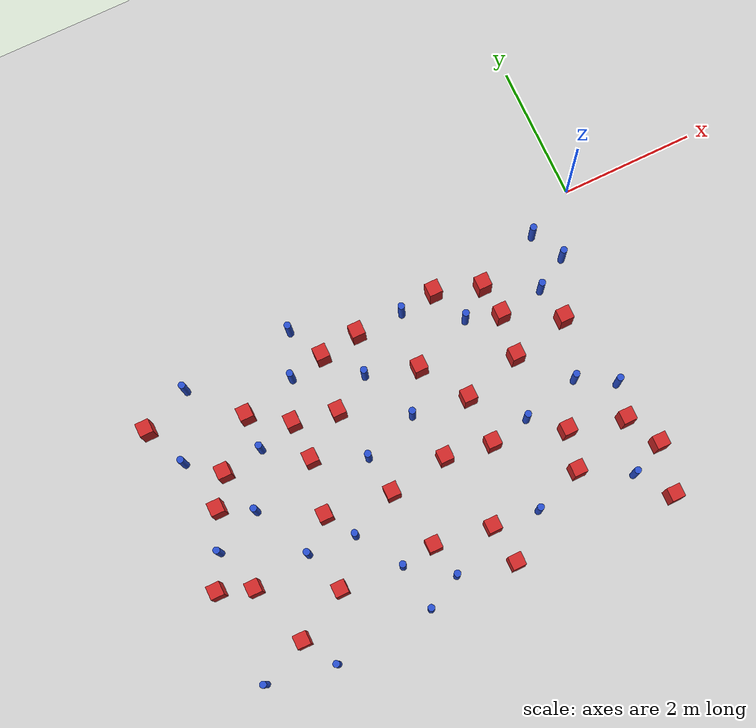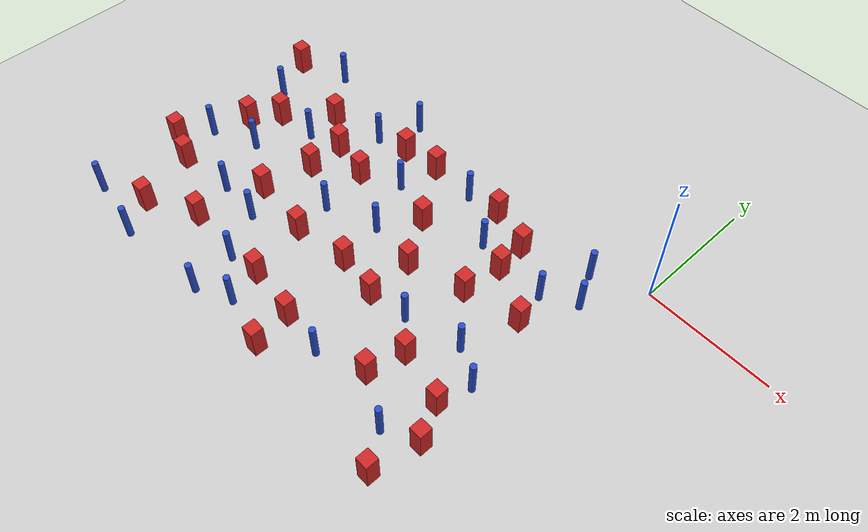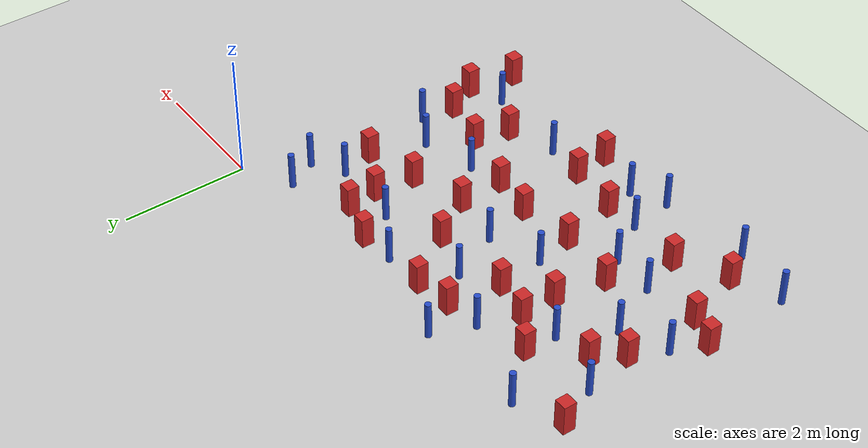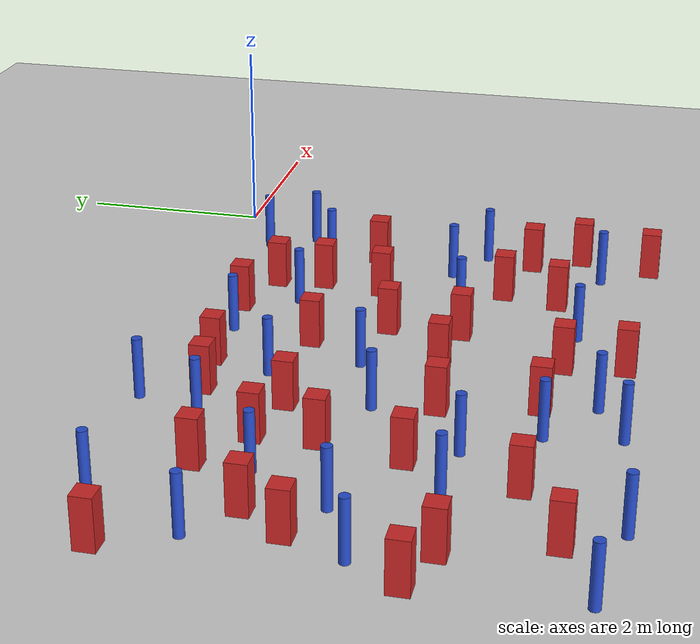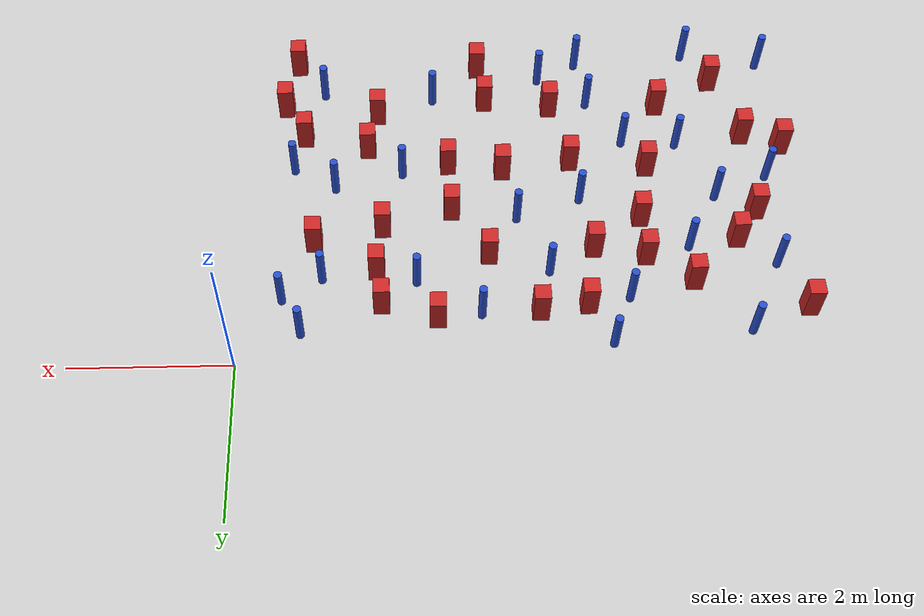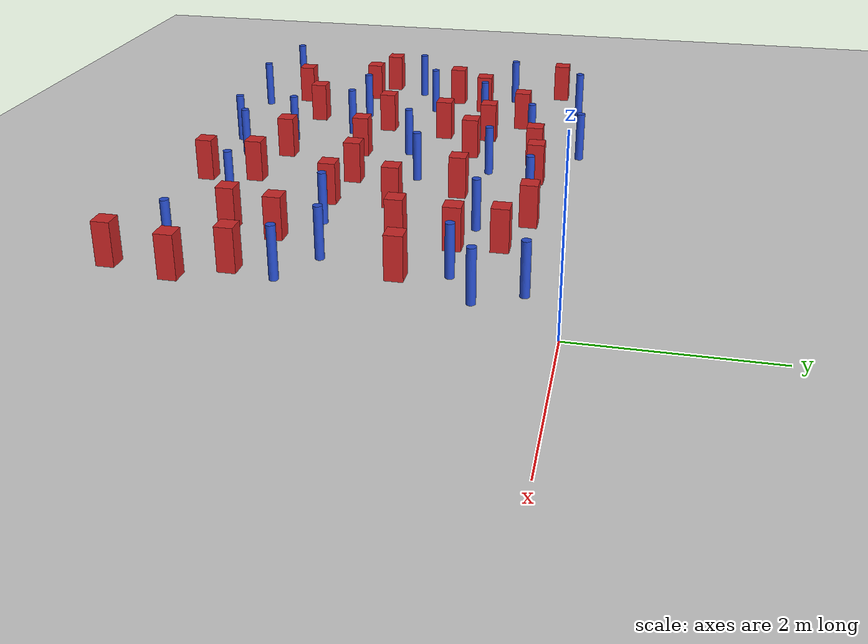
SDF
<sdf version="1.6">
 <world name="default">
  <model name="ground_plane">
   <static>1</static>
   <link name="link">
    <collision name="collision">
     <geometry><plane><normal>0 0 1</normal><size>100 100</size></plane></geometry>
     <surface><friction><ode><mu>100</mu><mu2>50</mu2></ode></friction></surface>
    </collision>
    <visual name="visual">
     <cast_shadows>0</cast_shadows>
     <geometry><plane><normal>0 0 1</normal><size>100 100</size></plane></geometry>
     <material>
      <ambient>1.0 1.0 1.0 1.0</ambient>
      <diffuse>0.8 0.8 0.8 1.0</diffuse>
      <specular>0.01 0.01 0.01 1.000000</specular>
     </material>
    </visual>
   </link>
  </model>
  <model name="pole_obstacle4">
   <static>true</static>
   <pose>-1.16663642655 -2.58017603443 2.88873142074e-08 -9.90536689791e-09 4.6021994899e-07 -1.20965994959e-07</pose>
   <link name="link">
    <pose>0 0 0.3 0 -0 0</pose>
    <inertial>
     <mass>1</mass>
     <inertia><ixx>0.145833</ixx><ixy>0</ixy><ixz>0</ixz><iyy>0.145833</iyy><iyz>0</iyz><izz>0.125</izz></inertia>
    </inertial>
    <collision name="collision">
     <geometry><cylinder><radius>0.05</radius><length>.6</length></cylinder></geometry>
    </collision>
    <visual name="visual">
     <geometry><cylinder><radius>0.05</radius><length>.6</length></cylinder></geometry>
     <material>
      <script><name>Gazebo/Blue</name><uri>file://media/materials/scripts/gazebo.material</uri></script>
     </material>
    </visual>
   </link>
  </model>
  <model name="pole_obstacle10">
   <static>true</static>
   <pose>-4.92236656138 -3.26465906516 2.88873142074e-08 -9.90536690245e-09 4.6021994898e-07 -1.20965994966e-07</pose>
   <link name="link">
    <pose>0 0 0.3 0 -0 0</pose>
    <inertial>
     <mass>1</mass>
     <inertia><ixx>0.145833</ixx><ixy>0</ixy><ixz>0</ixz><iyy>0.145833</iyy><iyz>0</iyz><izz>0.125</izz></inertia>
    </inertial>
    <collision name="collision">
     <geometry><cylinder><radius>0.05</radius><length>.6</length></cylinder></geometry>
    </collision>
    <visual name="visual">
     <geometry><cylinder><radius>0.05</radius><length>.6</length></cylinder></geometry>
     <material>
      <script><name>Gazebo/Blue</name><uri>file://media/materials/scripts/gazebo.material</uri></script>
     </material>
    </visual>
   </link>
  </model>
  <model name="square_post_obstacle10">
   <static>true</static>
   <pose>-6.96881998501 -0.65673575316 8.22691968438e-08 7.2212513382e-06 -7.54495500217e-07 2.29674213826e-05</pose>
   <link name="link">
    <pose>0 0 0.25 0 -0 0</pose>
    <inertial>
     <mass>100</mass>
     <inertia>
      <ixx>0.166667</ixx>
      <ixy>0</ixy>
      <ixz>0</ixz>
      <iyy>0.166667</iyy>
      <iyz>0</iyz>
      <izz>0.166667</izz>
     </inertia>
    </inertial>
    <collision name="collision"><geometry><box><size>.2 .2 .5</size></box></geometry></collision>
    <visual name="visual">
     <geometry><box><size>.2 .2 .5</size></box></geometry>
     <material>
      <script><name>Gazebo/Red</name><uri>file://media/materials/scripts/gazebo.material</uri></script>
     </material>
    </visual>
   </link>
  </model>
  <model name="pole_obstacle24">
   <static>true</static>
   <pose>-5.61684106353 -1.58426653269 2.88873142074e-08 -9.90536689445e-09 4.60219948999e-07 -1.20965994956e-07</pose>
   <link name="link">
    <pose>0 0 0.3 0 -0 0</pose>
    <inertial>
     <mass>1</mass>
     <inertia><ixx>0.145833</ixx><ixy>0</ixy><ixz>0</ixz><iyy>0.145833</iyy><iyz>0</iyz><izz>0.125</izz></inertia>
    </inertial>
    <collision name="collision">
     <geometry><cylinder><radius>0.05</radius><length>.6</length></cylinder></geometry>
    </collision>
    <visual name="visual">
     <geometry><cylinder><radius>0.05</radius><length>.6</length></cylinder></geometry>
     <material>
      <script><name>Gazebo/Blue</name><uri>file://media/materials/scripts/gazebo.material</uri></script>
     </material>
    </visual>
   </link>
  </model>
  <model name="square_post_obstacle20">
   <static>true</static>
   <pose>-4.40795118688 -1.56538913831 8.22691968438e-08 7.2212513382e-06 -7.54495500217e-07 2.29674213826e-05</pose>
   <link name="link">
    <pose>0 0 0.25 0 -0 0</pose>
    <inertial>
     <mass>100</mass>
     <inertia>
      <ixx>0.166667</ixx>
      <ixy>0</ixy>
      <ixz>0</ixz>
      <iyy>0.166667</iyy>
      <iyz>0</iyz>
      <izz>0.166667</izz>
     </inertia>
    </inertial>
    <collision name="collision"><geometry><box><size>.2 .2 .5</size></box></geometry></collision>
    <visual name="visual">
     <geometry><box><size>.2 .2 .5</size></box></geometry>
     <material>
      <script><name>Gazebo/Red</name><uri>file://media/materials/scripts/gazebo.material</uri></script>
     </material>
    </visual>
   </link>
  </model>
  <model name="pole_obstacle30">
   <static>true</static>
   <pose>-3.84176617193 -1.24504539773 2.88873142074e-08 -9.90536689395e-09 4.60219949e-07 -1.20965994953e-07</pose>
   <link name="link">
    <pose>0 0 0.3 0 -0 0</pose>
    <inertial>
     <mass>1</mass>
     <inertia><ixx>0.145833</ixx><ixy>0</ixy><ixz>0</ixz><iyy>0.145833</iyy><iyz>0</iyz><izz>0.125</izz></inertia>
    </inertial>
    <collision name="collision">
     <geometry><cylinder><radius>0.05</radius><length>.6</length></cylinder></geometry>
    </collision>
    <visual name="visual">
     <geometry><cylinder><radius>0.05</radius><length>.6</length></cylinder></geometry>
     <material>
      <script><name>Gazebo/Blue</name><uri>file://media/materials/scripts/gazebo.material</uri></script>
     </material>
    </visual>
   </link>
  </model>
  <model name="square_post_obstacle25">
   <static>true</static>
   <pose>-5.42691669318 -3.85780183142 8.22691968438e-08 7.2212513382e-06 -7.54495500217e-07 2.29674213826e-05</pose>
   <link name="link">
    <pose>0 0 0.25 0 -0 0</pose>
    <inertial>
     <mass>100</mass>
     <inertia>
      <ixx>0.166667</ixx>
      <ixy>0</ixy>
      <ixz>0</ixz>
      <iyy>0.166667</iyy>
      <iyz>0</iyz>
      <izz>0.166667</izz>
     </inertia>
    </inertial>
    <collision name="collision"><geometry><box><size>.2 .2 .5</size></box></geometry></collision>
    <visual name="visual">
     <geometry><box><size>.2 .2 .5</size></box></geometry>
     <material>
      <script><name>Gazebo/Red</name><uri>file://media/materials/scripts/gazebo.material</uri></script>
     </material>
    </visual>
   </link>
  </model>
  <model name="square_post_obstacle29">
   <static>true</static>
   <pose>-3.09550825912 -1.48532517315 8.22691968438e-08 7.2212513382e-06 -7.54495500217e-07 2.29674213826e-05</pose>
   <link name="link">
    <pose>0 0 0.25 0 -0 0</pose>
    <inertial>
     <mass>100</mass>
     <inertia>
      <ixx>0.166667</ixx>
      <ixy>0</ixy>
      <ixz>0</ixz>
      <iyy>0.166667</iyy>
      <iyz>0</iyz>
      <izz>0.166667</izz>
     </inertia>
    </inertial>
    <collision name="collision"><geometry><box><size>.2 .2 .5</size></box></geometry></collision>
    <visual name="visual">
     <geometry><box><size>.2 .2 .5</size></box></geometry>
     <material>
      <script><name>Gazebo/Red</name><uri>file://media/materials/scripts/gazebo.material</uri></script>
     </material>
    </visual>
   </link>
  </model>
  <model name="square_post_obstacle33">
   <static>true</static>
   <pose>-3.0570038275 -4.56616719485 8.22691968438e-08 7.2212513382e-06 -7.54495500217e-07 2.29674213826e-05</pose>
   <link name="link">
    <pose>0 0 0.25 0 -0 0</pose>
    <inertial>
     <mass>100</mass>
     <inertia>
      <ixx>0.166667</ixx>
      <ixy>0</ixy>
      <ixz>0</ixz>
      <iyy>0.166667</iyy>
      <iyz>0</iyz>
      <izz>0.166667</izz>
     </inertia>
    </inertial>
    <collision name="collision"><geometry><box><size>.2 .2 .5</size></box></geometry></collision>
    <visual name="visual">
     <geometry><box><size>.2 .2 .5</size></box></geometry>
     <material>
      <script><name>Gazebo/Red</name><uri>file://media/materials/scripts/gazebo.material</uri></script>
     </material>
    </visual>
   </link>
  </model>
  <model name="square_post_obstacle38">
   <static>true</static>
   <pose>-6.51784502403 -2.10433393995 8.22691968438e-08 7.2212513382e-06 -7.54495500217e-07 2.29674213826e-05</pose>
   <link name="link">
    <pose>0 0 0.25 0 -0 0</pose>
    <inertial>
     <mass>100</mass>
     <inertia>
      <ixx>0.166667</ixx>
      <ixy>0</ixy>
      <ixz>0</ixz>
      <iyy>0.166667</iyy>
      <iyz>0</iyz>
      <izz>0.166667</izz>
     </inertia>
    </inertial>
    <collision name="collision"><geometry><box><size>.2 .2 .5</size></box></geometry></collision>
    <visual name="visual">
     <geometry><box><size>.2 .2 .5</size></box></geometry>
     <material>
      <script><name>Gazebo/Red</name><uri>file://media/materials/scripts/gazebo.material</uri></script>
     </material>
    </visual>
   </link>
  </model>
  <model name="pole_obstacle55">
   <static>true</static>
   <pose>-0.530656938765 -0.892288822377 2.88873142074e-08 -9.90536689626e-09 4.60219948994e-07 -1.20965994957e-07</pose>
   <link name="link">
    <pose>0 0 0.3 0 -0 0</pose>
    <inertial>
     <mass>1</mass>
     <inertia><ixx>0.145833</ixx><ixy>0</ixy><ixz>0</ixz><iyy>0.145833</iyy><iyz>0</iyz><izz>0.125</izz></inertia>
    </inertial>
    <collision name="collision">
     <geometry><cylinder><radius>0.05</radius><length>.6</length></cylinder></geometry>
    </collision>
    <visual name="visual">
     <geometry><cylinder><radius>0.05</radius><length>.6</length></cylinder></geometry>
     <material>
      <script><name>Gazebo/Blue</name><uri>file://media/materials/scripts/gazebo.material</uri></script>
     </material>
    </visual>
   </link>
  </model>
  <model name="square_post_obstacle50">
   <static>true</static>
   <pose>-6.50109970489 -3.33422519101 8.22691968438e-08 7.2212513382e-06 -7.54495500217e-07 2.29674213826e-05</pose>
   <link name="link">
    <pose>0 0 0.25 0 -0 0</pose>
    <inertial>
     <mass>100</mass>
     <inertia>
      <ixx>0.166667</ixx>
      <ixy>0</ixy>
      <ixz>0</ixz>
      <iyy>0.166667</iyy>
      <iyz>0</iyz>
      <izz>0.166667</izz>
     </inertia>
    </inertial>
    <collision name="collision"><geometry><box><size>.2 .2 .5</size></box></geometry></collision>
    <visual name="visual">
     <geometry><box><size>.2 .2 .5</size></box></geometry>
     <material>
      <script><name>Gazebo/Red</name><uri>file://media/materials/scripts/gazebo.material</uri></script>
     </material>
    </visual>
   </link>
  </model>
  <model name="square_post_obstacle54">
   <static>true</static>
   <pose>-4.20372957103 -2.93609565165 8.22691968438e-08 7.2212513382e-06 -7.54495500217e-07 2.29674213826e-05</pose>
   <link name="link">
    <pose>0 0 0.25 0 -0 0</pose>
    <inertial>
     <mass>100</mass>
     <inertia>
      <ixx>0.166667</ixx>
      <ixy>0</ixy>
      <ixz>0</ixz>
      <iyy>0.166667</iyy>
      <iyz>0</iyz>
      <izz>0.166667</izz>
     </inertia>
    </inertial>
    <collision name="collision"><geometry><box><size>.2 .2 .5</size></box></geometry></collision>
    <visual name="visual">
     <geometry><box><size>.2 .2 .5</size></box></geometry>
     <material>
      <script><name>Gazebo/Red</name><uri>file://media/materials/scripts/gazebo.material</uri></script>
     </material>
    </visual>
   </link>
  </model>
  <model name="pole_obstacle71">
   <static>true</static>
   <pose>-6.90318449231 -4.59337825016 2.88873142074e-08 -9.90536690842e-09 4.60219948965e-07 -1.20965994976e-07</pose>
   <link name="link">
    <pose>0 0 0.3 0 -0 0</pose>
    <inertial>
     <mass>1</mass>
     <inertia><ixx>0.145833</ixx><ixy>0</ixy><ixz>0</ixz><iyy>0.145833</iyy><iyz>0</iyz><izz>0.125</izz></inertia>
    </inertial>
    <collision name="collision">
     <geometry><cylinder><radius>0.05</radius><length>.6</length></cylinder></geometry>
    </collision>
    <visual name="visual">
     <geometry><cylinder><radius>0.05</radius><length>.6</length></cylinder></geometry>
     <material>
      <script><name>Gazebo/Blue</name><uri>file://media/materials/scripts/gazebo.material</uri></script>
     </material>
    </visual>
   </link>
  </model>
  <model name="pole_obstacle79">
   <static>true</static>
   <pose>-3.88040402192 -4.37501513922 2.88873142074e-08 -9.90536689859e-09 4.60219948989e-07 -1.20965994961e-07</pose>
   <link name="link">
    <pose>0 0 0.3 0 -0 0</pose>
    <inertial>
     <mass>1</mass>
     <inertia><ixx>0.145833</ixx><ixy>0</ixy><ixz>0</ixz><iyy>0.145833</iyy><iyz>0</iyz><izz>0.125</izz></inertia>
    </inertial>
    <collision name="collision">
     <geometry><cylinder><radius>0.05</radius><length>.6</length></cylinder></geometry>
    </collision>
    <visual name="visual">
     <geometry><cylinder><radius>0.05</radius><length>.6</length></cylinder></geometry>
     <material>
      <script><name>Gazebo/Blue</name><uri>file://media/materials/scripts/gazebo.material</uri></script>
     </material>
    </visual>
   </link>
  </model>
  <model name="pole_obstacle80">
   <static>true</static>
   <pose>-6.68194379249 -1.30589174306 2.88873142074e-08 -9.90536689445e-09 4.60219948999e-07 -1.20965994956e-07</pose>
   <link name="link">
    <pose>0 0 0.3 0 -0 0</pose>
    <inertial>
     <mass>1</mass>
     <inertia><ixx>0.145833</ixx><ixy>0</ixy><ixz>0</ixz><iyy>0.145833</iyy><iyz>0</iyz><izz>0.125</izz></inertia>
    </inertial>
    <collision name="collision">
     <geometry><cylinder><radius>0.05</radius><length>.6</length></cylinder></geometry>
    </collision>
    <visual name="visual">
     <geometry><cylinder><radius>0.05</radius><length>.6</length></cylinder></geometry>
     <material>
      <script><name>Gazebo/Blue</name><uri>file://media/materials/scripts/gazebo.material</uri></script>
     </material>
    </visual>
   </link>
  </model>
  <model name="square_post_obstacle69">
   <static>true</static>
   <pose>-3.68719439955 -0.652360961696 8.22691968438e-08 7.2212513382e-06 -7.54495500217e-07 2.29674213826e-05</pose>
   <link name="link">
    <pose>0 0 0.25 0 -0 0</pose>
    <inertial>
     <mass>100</mass>
     <inertia>
      <ixx>0.166667</ixx>
      <ixy>0</ixy>
      <ixz>0</ixz>
      <iyy>0.166667</iyy>
      <iyz>0</iyz>
      <izz>0.166667</izz>
     </inertia>
    </inertial>
    <collision name="collision"><geometry><box><size>.2 .2 .5</size></box></geometry></collision>
    <visual name="visual">
     <geometry><box><size>.2 .2 .5</size></box></geometry>
     <material>
      <script><name>Gazebo/Red</name><uri>file://media/materials/scripts/gazebo.material</uri></script>
     </material>
    </visual>
   </link>
  </model>
  <model name="square_post_obstacle70">
   <static>true</static>
   <pose>-6.19221580819 -4.2697845086 8.22691968438e-08 7.22125133819e-06 -7.54495500217e-07 2.29674213826e-05</pose>
   <link name="link">
    <pose>0 0 0.25 0 -0 0</pose>
    <inertial>
     <mass>100</mass>
     <inertia>
      <ixx>0.166667</ixx>
      <ixy>0</ixy>
      <ixz>0</ixz>
      <iyy>0.166667</iyy>
      <iyz>0</iyz>
      <izz>0.166667</izz>
     </inertia>
    </inertial>
    <collision name="collision"><geometry><box><size>.2 .2 .5</size></box></geometry></collision>
    <visual name="visual">
     <geometry><box><size>.2 .2 .5</size></box></geometry>
     <material>
      <script><name>Gazebo/Red</name><uri>file://media/materials/scripts/gazebo.material</uri></script>
     </material>
    </visual>
   </link>
  </model>
  <model name="pole_obstacle83">
   <static>true</static>
   <pose>-4.80191894359 -0.843159100988 2.88873142074e-08 -9.90536689837e-09 4.60219948989e-07 -1.2096599496e-07</pose>
   <link name="link">
    <pose>0 0 0.3 0 -0 0</pose>
    <inertial>
     <mass>1</mass>
     <inertia><ixx>0.145833</ixx><ixy>0</ixy><ixz>0</ixz><iyy>0.145833</iyy><iyz>0</iyz><izz>0.125</izz></inertia>
    </inertial>
    <collision name="collision">
     <geometry><cylinder><radius>0.05</radius><length>.6</length></cylinder></geometry>
    </collision>
    <visual name="visual">
     <geometry><cylinder><radius>0.05</radius><length>.6</length></cylinder></geometry>
     <material>
      <script><name>Gazebo/Blue</name><uri>file://media/materials/scripts/gazebo.material</uri></script>
     </material>
    </visual>
   </link>
  </model>
  <model name="square_post_obstacle82">
   <static>true</static>
   <pose>-1.75753726139 -0.787840217617 8.22691968438e-08 7.2212513382e-06 -7.54495500217e-07 2.29674213826e-05</pose>
   <link name="link">
    <pose>0 0 0.25 0 -0 0</pose>
    <inertial>
     <mass>100</mass>
     <inertia>
      <ixx>0.166667</ixx>
      <ixy>0</ixy>
      <ixz>0</ixz>
      <iyy>0.166667</iyy>
      <iyz>0</iyz>
      <izz>0.166667</izz>
     </inertia>
    </inertial>
    <collision name="collision"><geometry><box><size>.2 .2 .5</size></box></geometry></collision>
    <visual name="visual">
     <geometry><box><size>.2 .2 .5</size></box></geometry>
     <material>
      <script><name>Gazebo/Red</name><uri>file://media/materials/scripts/gazebo.material</uri></script>
     </material>
    </visual>
   </link>
  </model>
  <model name="square_post_obstacle90">
   <static>true</static>
   <pose>-1.71524015748 -3.77076345288 8.22691968438e-08 7.2212513382e-06 -7.54495500217e-07 2.29674213826e-05</pose>
   <link name="link">
    <pose>0 0 0.25 0 -0 0</pose>
    <inertial>
     <mass>100</mass>
     <inertia>
      <ixx>0.166667</ixx>
      <ixy>0</ixy>
      <ixz>0</ixz>
      <iyy>0.166667</iyy>
      <iyz>0</iyz>
      <izz>0.166667</izz>
     </inertia>
    </inertial>
    <collision name="collision"><geometry><box><size>.2 .2 .5</size></box></geometry></collision>
    <visual name="visual">
     <geometry><box><size>.2 .2 .5</size></box></geometry>
     <material>
      <script><name>Gazebo/Red</name><uri>file://media/materials/scripts/gazebo.material</uri></script>
     </material>
    </visual>
   </link>
  </model>
  <model name="square_post_obstacle91">
   <static>true</static>
   <pose>-5.05463059027 -1.43405411549 8.22691968438e-08 7.2212513382e-06 -7.54495500217e-07 2.29674213826e-05</pose>
   <link name="link">
    <pose>0 0 0.25 0 -0 0</pose>
    <inertial>
     <mass>100</mass>
     <inertia>
      <ixx>0.166667</ixx>
      <ixy>0</ixy>
      <ixz>0</ixz>
      <iyy>0.166667</iyy>
      <iyz>0</iyz>
      <izz>0.166667</izz>
     </inertia>
    </inertial>
    <collision name="collision"><geometry><box><size>.2 .2 .5</size></box></geometry></collision>
    <visual name="visual">
     <geometry><box><size>.2 .2 .5</size></box></geometry>
     <material>
      <script><name>Gazebo/Red</name><uri>file://media/materials/scripts/gazebo.material</uri></script>
     </material>
    </visual>
   </link>
  </model>
  <model name="pole_obstacle106">
   <static>true</static>
   <pose>-2.02990933846 -2.8007991814 2.88873142074e-08 -9.90536692171e-09 4.60219948934e-07 -1.20965994985e-07</pose>
   <link name="link">
    <pose>0 0 0.3 0 -0 0</pose>
    <inertial>
     <mass>1</mass>
     <inertia><ixx>0.145833</ixx><ixy>0</ixy><ixz>0</ixz><iyy>0.145833</iyy><iyz>0</iyz><izz>0.125</izz></inertia>
    </inertial>
    <collision name="collision">
     <geometry><cylinder><radius>0.05</radius><length>.6</length></cylinder></geometry>
    </collision>
    <visual name="visual">
     <geometry><cylinder><radius>0.05</radius><length>.6</length></cylinder></geometry>
     <material>
      <script><name>Gazebo/Blue</name><uri>file://media/materials/scripts/gazebo.material</uri></script>
     </material>
    </visual>
   </link>
  </model>
  <model name="pole_obstacle107">
   <static>true</static>
   <pose>-4.29246524523 -2.34553854923 2.88873142074e-08 -9.90536690245e-09 4.6021994898e-07 -1.20965994966e-07</pose>
   <link name="link">
    <pose>0 0 0.3 0 -0 0</pose>
    <inertial>
     <mass>1</mass>
     <inertia><ixx>0.145833</ixx><ixy>0</ixy><ixz>0</ixz><iyy>0.145833</iyy><iyz>0</iyz><izz>0.125</izz></inertia>
    </inertial>
    <collision name="collision">
     <geometry><cylinder><radius>0.05</radius><length>.6</length></cylinder></geometry>
    </collision>
    <visual name="visual">
     <geometry><cylinder><radius>0.05</radius><length>.6</length></cylinder></geometry>
     <material>
      <script><name>Gazebo/Blue</name><uri>file://media/materials/scripts/gazebo.material</uri></script>
     </material>
    </visual>
   </link>
  </model>
  <model name="square_post_obstacle111">
   <static>true</static>
   <pose>-6.22324336756 -1.67517569527 8.22691968438e-08 7.2212513382e-06 -7.54495500217e-07 2.29674213826e-05</pose>
   <link name="link">
    <pose>0 0 0.25 0 -0 0</pose>
    <inertial>
     <mass>100</mass>
     <inertia>
      <ixx>0.166667</ixx>
      <ixy>0</ixy>
      <ixz>0</ixz>
      <iyy>0.166667</iyy>
      <iyz>0</iyz>
      <izz>0.166667</izz>
     </inertia>
    </inertial>
    <collision name="collision"><geometry><box><size>.2 .2 .5</size></box></geometry></collision>
    <visual name="visual">
     <geometry><box><size>.2 .2 .5</size></box></geometry>
     <material>
      <script><name>Gazebo/Red</name><uri>file://media/materials/scripts/gazebo.material</uri></script>
     </material>
    </visual>
   </link>
  </model>
  <model name="square_post_obstacle114">
   <static>true</static>
   <pose>-0.761712458081 -3.40460222311 8.22691968438e-08 7.2212513382e-06 -7.54495500217e-07 2.29674213826e-05</pose>
   <link name="link">
    <pose>0 0 0.25 0 -0 0</pose>
    <inertial>
     <mass>100</mass>
     <inertia>
      <ixx>0.166667</ixx>
      <ixy>0</ixy>
      <ixz>0</ixz>
      <iyy>0.166667</iyy>
      <iyz>0</iyz>
      <izz>0.166667</izz>
     </inertia>
    </inertial>
    <collision name="collision"><geometry><box><size>.2 .2 .5</size></box></geometry></collision>
    <visual name="visual">
     <geometry><box><size>.2 .2 .5</size></box></geometry>
     <material>
      <script><name>Gazebo/Red</name><uri>file://media/materials/scripts/gazebo.material</uri></script>
     </material>
    </visual>
   </link>
  </model>
  <model name="pole_obstacle116">
   <static>true</static>
   <pose>-1.00162326107 -4.16505022232 2.88873142074e-08 -9.90536689792e-09 4.6021994899e-07 -1.2096599496e-07</pose>
   <link name="link">
    <pose>0 0 0.3 0 -0 0</pose>
    <inertial>
     <mass>1</mass>
     <inertia><ixx>0.145833</ixx><ixy>0</ixy><ixz>0</ixz><iyy>0.145833</iyy><iyz>0</iyz><izz>0.125</izz></inertia>
    </inertial>
    <collision name="collision">
     <geometry><cylinder><radius>0.05</radius><length>.6</length></cylinder></geometry>
    </collision>
    <visual name="visual">
     <geometry><cylinder><radius>0.05</radius><length>.6</length></cylinder></geometry>
     <material>
      <script><name>Gazebo/Blue</name><uri>file://media/materials/scripts/gazebo.material</uri></script>
     </material>
    </visual>
   </link>
  </model>
  <model name="pole_obstacle117">
   <static>true</static>
   <pose>-3.47391530844 -2.06127785062 2.88873142074e-08 -9.90536690232e-09 4.6021994898e-07 -1.20965994968e-07</pose>
   <link name="link">
    <pose>0 0 0.3 0 -0 0</pose>
    <inertial>
     <mass>1</mass>
     <inertia><ixx>0.145833</ixx><ixy>0</ixy><ixz>0</ixz><iyy>0.145833</iyy><iyz>0</iyz><izz>0.125</izz></inertia>
    </inertial>
    <collision name="collision">
     <geometry><cylinder><radius>0.05</radius><length>.6</length></cylinder></geometry>
    </collision>
    <visual name="visual">
     <geometry><cylinder><radius>0.05</radius><length>.6</length></cylinder></geometry>
     <material>
      <script><name>Gazebo/Blue</name><uri>file://media/materials/scripts/gazebo.material</uri></script>
     </material>
    </visual>
   </link>
  </model>
  <model name="square_post_obstacle116">
   <static>true</static>
   <pose>-2.6486870793 -2.17399005947 8.22691968438e-08 7.2212513382e-06 -7.54495500217e-07 2.29674213826e-05</pose>
   <link name="link">
    <pose>0 0 0.25 0 -0 0</pose>
    <inertial>
     <mass>100</mass>
     <inertia>
      <ixx>0.166667</ixx>
      <ixy>0</ixy>
      <ixz>0</ixz>
      <iyy>0.166667</iyy>
      <iyz>0</iyz>
      <izz>0.166667</izz>
     </inertia>
    </inertial>
    <collision name="collision"><geometry><box><size>.2 .2 .5</size></box></geometry></collision>
    <visual name="visual">
     <geometry><box><size>.2 .2 .5</size></box></geometry>
     <material>
      <script><name>Gazebo/Red</name><uri>file://media/materials/scripts/gazebo.material</uri></script>
     </material>
    </visual>
   </link>
  </model>
  <model name="pole_obstacle121">
   <static>true</static>
   <pose>-6.24059979822 -0.349005802847 2.88873142074e-08 -9.90536689981e-09 4.60219948986e-07 -1.20965994962e-07</pose>
   <link name="link">
    <pose>0 0 0.3 0 -0 0</pose>
    <inertial>
     <mass>1</mass>
     <inertia><ixx>0.145833</ixx><ixy>0</ixy><ixz>0</ixz><iyy>0.145833</iyy><iyz>0</iyz><izz>0.125</izz></inertia>
    </inertial>
    <collision name="collision">
     <geometry><cylinder><radius>0.05</radius><length>.6</length></cylinder></geometry>
    </collision>
    <visual name="visual">
     <geometry><cylinder><radius>0.05</radius><length>.6</length></cylinder></geometry>
     <material>
      <script><name>Gazebo/Blue</name><uri>file://media/materials/scripts/gazebo.material</uri></script>
     </material>
    </visual>
   </link>
  </model>
  <model name="square_post_obstacle121">
   <static>true</static>
   <pose>-3.13533512477 -3.97251407063 8.22691968438e-08 7.2212513382e-06 -7.54495500217e-07 2.29674213826e-05</pose>
   <link name="link">
    <pose>0 0 0.25 0 -0 0</pose>
    <inertial>
     <mass>100</mass>
     <inertia>
      <ixx>0.166667</ixx>
      <ixy>0</ixy>
      <ixz>0</ixz>
      <iyy>0.166667</iyy>
      <iyz>0</iyz>
      <izz>0.166667</izz>
     </inertia>
    </inertial>
    <collision name="collision"><geometry><box><size>.2 .2 .5</size></box></geometry></collision>
    <visual name="visual">
     <geometry><box><size>.2 .2 .5</size></box></geometry>
     <material>
      <script><name>Gazebo/Red</name><uri>file://media/materials/scripts/gazebo.material</uri></script>
     </material>
    </visual>
   </link>
  </model>
  <model name="pole_obstacle132">
   <static>true</static>
   <pose>-5.62884213572 -3.21875507704 2.88873142074e-08 -9.90536690245e-09 4.6021994898e-07 -1.20965994966e-07</pose>
   <link name="link">
    <pose>0 0 0.3 0 -0 0</pose>
    <inertial>
     <mass>1</mass>
     <inertia><ixx>0.145833</ixx><ixy>0</ixy><ixz>0</ixz><iyy>0.145833</iyy><iyz>0</iyz><izz>0.125</izz></inertia>
    </inertial>
    <collision name="collision">
     <geometry><cylinder><radius>0.05</radius><length>.6</length></cylinder></geometry>
    </collision>
    <visual name="visual">
     <geometry><cylinder><radius>0.05</radius><length>.6</length></cylinder></geometry>
     <material>
      <script><name>Gazebo/Blue</name><uri>file://media/materials/scripts/gazebo.material</uri></script>
     </material>
    </visual>
   </link>
  </model>
  <model name="pole_obstacle135">
   <static>true</static>
   <pose>-6.04095069701 -2.356133228 2.88873142074e-08 -9.90536690245e-09 4.6021994898e-07 -1.20965994966e-07</pose>
   <link name="link">
    <pose>0 0 0.3 0 -0 0</pose>
    <inertial>
     <mass>1</mass>
     <inertia><ixx>0.145833</ixx><ixy>0</ixy><ixz>0</ixz><iyy>0.145833</iyy><iyz>0</iyz><izz>0.125</izz></inertia>
    </inertial>
    <collision name="collision">
     <geometry><cylinder><radius>0.05</radius><length>.6</length></cylinder></geometry>
    </collision>
    <visual name="visual">
     <geometry><cylinder><radius>0.05</radius><length>.6</length></cylinder></geometry>
     <material>
      <script><name>Gazebo/Blue</name><uri>file://media/materials/scripts/gazebo.material</uri></script>
     </material>
    </visual>
   </link>
  </model>
  <model name="square_post_obstacle134">
   <static>true</static>
   <pose>-0.914492345167 -1.71746240279 8.22691968438e-08 7.22125133819e-06 -7.54495500217e-07 2.29674213826e-05</pose>
   <link name="link">
    <pose>0 0 0.25 0 -0 0</pose>
    <inertial>
     <mass>100</mass>
     <inertia>
      <ixx>0.166667</ixx>
      <ixy>0</ixy>
      <ixz>0</ixz>
      <iyy>0.166667</iyy>
      <iyz>0</iyz>
      <izz>0.166667</izz>
     </inertia>
    </inertial>
    <collision name="collision"><geometry><box><size>.2 .2 .5</size></box></geometry></collision>
    <visual name="visual">
     <geometry><box><size>.2 .2 .5</size></box></geometry>
     <material>
      <script><name>Gazebo/Red</name><uri>file://media/materials/scripts/gazebo.material</uri></script>
     </material>
    </visual>
   </link>
  </model>
  <model name="pole_obstacle143">
   <static>true</static>
   <pose>-4.5048139747 -3.93658515417 2.88873142074e-08 -9.90536690245e-09 4.6021994898e-07 -1.20965994966e-07</pose>
   <link name="link">
    <pose>0 0 0.3 0 -0 0</pose>
    <inertial>
     <mass>1</mass>
     <inertia><ixx>0.145833</ixx><ixy>0</ixy><ixz>0</ixz><iyy>0.145833</iyy><iyz>0</iyz><izz>0.125</izz></inertia>
    </inertial>
    <collision name="collision">
     <geometry><cylinder><radius>0.05</radius><length>.6</length></cylinder></geometry>
    </collision>
    <visual name="visual">
     <geometry><cylinder><radius>0.05</radius><length>.6</length></cylinder></geometry>
     <material>
      <script><name>Gazebo/Blue</name><uri>file://media/materials/scripts/gazebo.material</uri></script>
     </material>
    </visual>
   </link>
  </model>
  <model name="square_post_obstacle142">
   <static>true</static>
   <pose>-5.03666070821 -2.02059526428 8.22691968438e-08 7.2212513382e-06 -7.54495500217e-07 2.29674213826e-05</pose>
   <link name="link">
    <pose>0 0 0.25 0 -0 0</pose>
    <inertial>
     <mass>100</mass>
     <inertia>
      <ixx>0.166667</ixx>
      <ixy>0</ixy>
      <ixz>0</ixz>
      <iyy>0.166667</iyy>
      <iyz>0</iyz>
      <izz>0.166667</izz>
     </inertia>
    </inertial>
    <collision name="collision"><geometry><box><size>.2 .2 .5</size></box></geometry></collision>
    <visual name="visual">
     <geometry><box><size>.2 .2 .5</size></box></geometry>
     <material>
      <script><name>Gazebo/Red</name><uri>file://media/materials/scripts/gazebo.material</uri></script>
     </material>
    </visual>
   </link>
  </model>
  <model name="pole_obstacle155">
   <static>true</static>
   <pose>-2.19122412288 -1.12361553106 2.88873142074e-08 -9.90536689395e-09 4.60219949e-07 -1.20965994953e-07</pose>
   <link name="link">
    <pose>0 0 0.3 0 -0 0</pose>
    <inertial>
     <mass>1</mass>
     <inertia><ixx>0.145833</ixx><ixy>0</ixy><ixz>0</ixz><iyy>0.145833</iyy><iyz>0</iyz><izz>0.125</izz></inertia>
    </inertial>
    <collision name="collision">
     <geometry><cylinder><radius>0.05</radius><length>.6</length></cylinder></geometry>
    </collision>
    <visual name="visual">
     <geometry><cylinder><radius>0.05</radius><length>.6</length></cylinder></geometry>
     <material>
      <script><name>Gazebo/Blue</name><uri>file://media/materials/scripts/gazebo.material</uri></script>
     </material>
    </visual>
   </link>
  </model>
  <model name="square_post_obstacle152">
   <static>true</static>
   <pose>-2.62327322366 -2.9067566029 8.22691968438e-08 7.2212513382e-06 -7.54495500217e-07 2.29674213826e-05</pose>
   <link name="link">
    <pose>0 0 0.25 0 -0 0</pose>
    <inertial>
     <mass>100</mass>
     <inertia>
      <ixx>0.166667</ixx>
      <ixy>0</ixy>
      <ixz>0</ixz>
      <iyy>0.166667</iyy>
      <iyz>0</iyz>
      <izz>0.166667</izz>
     </inertia>
    </inertial>
    <collision name="collision"><geometry><box><size>.2 .2 .5</size></box></geometry></collision>
    <visual name="visual">
     <geometry><box><size>.2 .2 .5</size></box></geometry>
     <material>
      <script><name>Gazebo/Red</name><uri>file://media/materials/scripts/gazebo.material</uri></script>
     </material>
    </visual>
   </link>
  </model>
  <model name="pole_obstacle163">
   <static>true</static>
   <pose>-4.4038821572 -4.64145710206 2.88873142074e-08 -9.90536690842e-09 4.60219948965e-07 -1.20965994976e-07</pose>
   <link name="link">
    <pose>0 0 0.3 0 -0 0</pose>
    <inertial>
     <mass>1</mass>
     <inertia><ixx>0.145833</ixx><ixy>0</ixy><ixz>0</ixz><iyy>0.145833</iyy><iyz>0</iyz><izz>0.125</izz></inertia>
    </inertial>
    <collision name="collision">
     <geometry><cylinder><radius>0.05</radius><length>.6</length></cylinder></geometry>
    </collision>
    <visual name="visual">
     <geometry><cylinder><radius>0.05</radius><length>.6</length></cylinder></geometry>
     <material>
      <script><name>Gazebo/Blue</name><uri>file://media/materials/scripts/gazebo.material</uri></script>
     </material>
    </visual>
   </link>
  </model>
  <model name="pole_obstacle165">
   <static>true</static>
   <pose>-5.89291770014 -4.76877254874 2.88873142074e-08 -9.90536690842e-09 4.60219948965e-07 -1.20965994976e-07</pose>
   <link name="link">
    <pose>0 0 0.3 0 -0 0</pose>
    <inertial>
     <mass>1</mass>
     <inertia><ixx>0.145833</ixx><ixy>0</ixy><ixz>0</ixz><iyy>0.145833</iyy><iyz>0</iyz><izz>0.125</izz></inertia>
    </inertial>
    <collision name="collision">
     <geometry><cylinder><radius>0.05</radius><length>.6</length></cylinder></geometry>
    </collision>
    <visual name="visual">
     <geometry><cylinder><radius>0.05</radius><length>.6</length></cylinder></geometry>
     <material>
      <script><name>Gazebo/Blue</name><uri>file://media/materials/scripts/gazebo.material</uri></script>
     </material>
    </visual>
   </link>
  </model>
  <model name="square_post_obstacle161">
   <static>true</static>
   <pose>-1.77401024791 -1.92132799323 8.22691968438e-08 7.2212513382e-06 -7.54495500217e-07 2.29674213826e-05</pose>
   <link name="link">
    <pose>0 0 0.25 0 -0 0</pose>
    <inertial>
     <mass>100</mass>
     <inertia>
      <ixx>0.166667</ixx>
      <ixy>0</ixy>
      <ixz>0</ixz>
      <iyy>0.166667</iyy>
      <iyz>0</iyz>
      <izz>0.166667</izz>
     </inertia>
    </inertial>
    <collision name="collision"><geometry><box><size>.2 .2 .5</size></box></geometry></collision>
    <visual name="visual">
     <geometry><box><size>.2 .2 .5</size></box></geometry>
     <material>
      <script><name>Gazebo/Red</name><uri>file://media/materials/scripts/gazebo.material</uri></script>
     </material>
    </visual>
   </link>
  </model>
  <model name="square_post_obstacle169">
   <static>true</static>
   <pose>-2.43815208342 -0.575788498677 8.22691968438e-08 7.2212513382e-06 -7.54495500217e-07 2.29674213826e-05</pose>
   <link name="link">
    <pose>0 0 0.25 0 -0 0</pose>
    <inertial>
     <mass>100</mass>
     <inertia>
      <ixx>0.166667</ixx>
      <ixy>0</ixy>
      <ixz>0</ixz>
      <iyy>0.166667</iyy>
      <iyz>0</iyz>
      <izz>0.166667</izz>
     </inertia>
    </inertial>
    <collision name="collision"><geometry><box><size>.2 .2 .5</size></box></geometry></collision>
    <visual name="visual">
     <geometry><box><size>.2 .2 .5</size></box></geometry>
     <material>
      <script><name>Gazebo/Red</name><uri>file://media/materials/scripts/gazebo.material</uri></script>
     </material>
    </visual>
   </link>
  </model>
  <model name="square_post_obstacle173">
   <static>true</static>
   <pose>-1.69782777585 -1.28447974077 8.22691968438e-08 7.2212513382e-06 -7.54495500217e-07 2.29674213826e-05</pose>
   <link name="link">
    <pose>0 0 0.25 0 -0 0</pose>
    <inertial>
     <mass>100</mass>
     <inertia>
      <ixx>0.166667</ixx>
      <ixy>0</ixy>
      <ixz>0</ixz>
      <iyy>0.166667</iyy>
      <iyz>0</iyz>
      <izz>0.166667</izz>
     </inertia>
    </inertial>
    <collision name="collision"><geometry><box><size>.2 .2 .5</size></box></geometry></collision>
    <visual name="visual">
     <geometry><box><size>.2 .2 .5</size></box></geometry>
     <material>
      <script><name>Gazebo/Red</name><uri>file://media/materials/scripts/gazebo.material</uri></script>
     </material>
    </visual>
   </link>
  </model>
  <model name="square_post_obstacle174">
   <static>true</static>
   <pose>-5.60839638985 -1.05674028576 8.22691968438e-08 7.22125133819e-06 -7.54495500217e-07 2.29674213826e-05</pose>
   <link name="link">
    <pose>0 0 0.25 0 -0 0</pose>
    <inertial>
     <mass>100</mass>
     <inertia>
      <ixx>0.166667</ixx>
      <ixy>0</ixy>
      <ixz>0</ixz>
      <iyy>0.166667</iyy>
      <iyz>0</iyz>
      <izz>0.166667</izz>
     </inertia>
    </inertial>
    <collision name="collision"><geometry><box><size>.2 .2 .5</size></box></geometry></collision>
    <visual name="visual">
     <geometry><box><size>.2 .2 .5</size></box></geometry>
     <material>
      <script><name>Gazebo/Red</name><uri>file://media/materials/scripts/gazebo.material</uri></script>
     </material>
    </visual>
   </link>
  </model>
  <model name="pole_obstacle181">
   <static>true</static>
   <pose>-2.97551123061 -0.640510524036 2.88873142074e-08 -9.90536689285e-09 4.60219949002e-07 -1.20965994953e-07</pose>
   <link name="link">
    <pose>0 0 0.3 0 -0 0</pose>
    <inertial>
     <mass>1</mass>
     <inertia><ixx>0.145833</ixx><ixy>0</ixy><ixz>0</ixz><iyy>0.145833</iyy><iyz>0</iyz><izz>0.125</izz></inertia>
    </inertial>
    <collision name="collision">
     <geometry><cylinder><radius>0.05</radius><length>.6</length></cylinder></geometry>
    </collision>
    <visual name="visual">
     <geometry><cylinder><radius>0.05</radius><length>.6</length></cylinder></geometry>
     <material>
      <script><name>Gazebo/Blue</name><uri>file://media/materials/scripts/gazebo.material</uri></script>
     </material>
    </visual>
   </link>
  </model>
  <model name="square_post_obstacle181">
   <static>true</static>
   <pose>-0.644743860858 -4.66235297299 8.22691968438e-08 7.22125133819e-06 -7.54495500217e-07 2.29674213826e-05</pose>
   <link name="link">
    <pose>0 0 0.25 0 -0 0</pose>
    <inertial>
     <mass>100</mass>
     <inertia>
      <ixx>0.166667</ixx>
      <ixy>0</ixy>
      <ixz>0</ixz>
      <iyy>0.166667</iyy>
      <iyz>0</iyz>
      <izz>0.166667</izz>
     </inertia>
    </inertial>
    <collision name="collision"><geometry><box><size>.2 .2 .5</size></box></geometry></collision>
    <visual name="visual">
     <geometry><box><size>.2 .2 .5</size></box></geometry>
     <material>
      <script><name>Gazebo/Red</name><uri>file://media/materials/scripts/gazebo.material</uri></script>
     </material>
    </visual>
   </link>
  </model>
  <model name="pole_obstacle182">
   <static>true</static>
   <pose>-0.774327402004 -0.406964163154 2.88873142074e-08 -9.90536689558e-09 4.60219948996e-07 -1.20965994957e-07</pose>
   <link name="link">
    <pose>0 0 0.3 0 -0 0</pose>
    <inertial>
     <mass>1</mass>
     <inertia><ixx>0.145833</ixx><ixy>0</ixy><ixz>0</ixz><iyy>0.145833</iyy><iyz>0</iyz><izz>0.125</izz></inertia>
    </inertial>
    <collision name="collision">
     <geometry><cylinder><radius>0.05</radius><length>.6</length></cylinder></geometry>
    </collision>
    <visual name="visual">
     <geometry><cylinder><radius>0.05</radius><length>.6</length></cylinder></geometry>
     <material>
      <script><name>Gazebo/Blue</name><uri>file://media/materials/scripts/gazebo.material</uri></script>
     </material>
    </visual>
   </link>
  </model>
  <model name="pole_obstacle184">
   <static>true</static>
   <pose>-6.73864638522 -2.66666711662 2.88873142074e-08 -9.90536690245e-09 4.6021994898e-07 -1.20965994966e-07</pose>
   <link name="link">
    <pose>0 0 0.3 0 -0 0</pose>
    <inertial>
     <mass>1</mass>
     <inertia><ixx>0.145833</ixx><ixy>0</ixy><ixz>0</ixz><iyy>0.145833</iyy><iyz>0</iyz><izz>0.125</izz></inertia>
    </inertial>
    <collision name="collision">
     <geometry><cylinder><radius>0.05</radius><length>.6</length></cylinder></geometry>
    </collision>
    <visual name="visual">
     <geometry><cylinder><radius>0.05</radius><length>.6</length></cylinder></geometry>
     <material>
      <script><name>Gazebo/Blue</name><uri>file://media/materials/scripts/gazebo.material</uri></script>
     </material>
    </visual>
   </link>
  </model>
  <model name="square_post_obstacle188">
   <static>true</static>
   <pose>-6.99072201062 -3.14969281038 8.22691968438e-08 7.2212513382e-06 -7.54495500217e-07 2.29674213826e-05</pose>
   <link name="link">
    <pose>0 0 0.25 0 -0 0</pose>
    <inertial>
     <mass>100</mass>
     <inertia>
      <ixx>0.166667</ixx>
      <ixy>0</ixy>
      <ixz>0</ixz>
      <iyy>0.166667</iyy>
      <iyz>0</iyz>
      <izz>0.166667</izz>
     </inertia>
    </inertial>
    <collision name="collision"><geometry><box><size>.2 .2 .5</size></box></geometry></collision>
    <visual name="visual">
     <geometry><box><size>.2 .2 .5</size></box></geometry>
     <material>
      <script><name>Gazebo/Red</name><uri>file://media/materials/scripts/gazebo.material</uri></script>
     </material>
    </visual>
   </link>
  </model>
  <model name="pole_obstacle187">
   <static>true</static>
   <pose>-4.54641003676 -0.201480265218 2.88873142074e-08 -9.90536689628e-09 4.60219948994e-07 -1.20965994959e-07</pose>
   <link name="link">
    <pose>0 0 0.3 0 -0 0</pose>
    <inertial>
     <mass>1</mass>
     <inertia><ixx>0.145833</ixx><ixy>0</ixy><ixz>0</ixz><iyy>0.145833</iyy><iyz>0</iyz><izz>0.125</izz></inertia>
    </inertial>
    <collision name="collision">
     <geometry><cylinder><radius>0.05</radius><length>.6</length></cylinder></geometry>
    </collision>
    <visual name="visual">
     <geometry><cylinder><radius>0.05</radius><length>.6</length></cylinder></geometry>
     <material>
      <script><name>Gazebo/Blue</name><uri>file://media/materials/scripts/gazebo.material</uri></script>
     </material>
    </visual>
   </link>
  </model>
  <model name="square_post_obstacle199">
   <static>true</static>
   <pose>-5.19018540622 -2.8233020856 8.22691968438e-08 7.2212513382e-06 -7.54495500217e-07 2.29674213826e-05</pose>
   <link name="link">
    <pose>0 0 0.25 0 -0 0</pose>
    <inertial>
     <mass>100</mass>
     <inertia>
      <ixx>0.166667</ixx>
      <ixy>0</ixy>
      <ixz>0</ixz>
      <iyy>0.166667</iyy>
      <iyz>0</iyz>
      <izz>0.166667</izz>
     </inertia>
    </inertial>
    <collision name="collision"><geometry><box><size>.2 .2 .5</size></box></geometry></collision>
    <visual name="visual">
     <geometry><box><size>.2 .2 .5</size></box></geometry>
     <material>
      <script><name>Gazebo/Red</name><uri>file://media/materials/scripts/gazebo.material</uri></script>
     </material>
    </visual>
   </link>
  </model>
  <model name="square_post_obstacle200">
   <static>true</static>
   <pose>-3.32014918276 -2.80430434635 8.22691968438e-08 7.2212513382e-06 -7.54495500217e-07 2.29674213826e-05</pose>
   <link name="link">
    <pose>0 0 0.25 0 -0 0</pose>
    <inertial>
     <mass>100</mass>
     <inertia>
      <ixx>0.166667</ixx>
      <ixy>0</ixy>
      <ixz>0</ixz>
      <iyy>0.166667</iyy>
      <iyz>0</iyz>
      <izz>0.166667</izz>
     </inertia>
    </inertial>
    <collision name="collision"><geometry><box><size>.2 .2 .5</size></box></geometry></collision>
    <visual name="visual">
     <geometry><box><size>.2 .2 .5</size></box></geometry>
     <material>
      <script><name>Gazebo/Red</name><uri>file://media/materials/scripts/gazebo.material</uri></script>
     </material>
    </visual>
   </link>
  </model>
  <model name="square_post_obstacle206">
   <static>true</static>
   <pose>-4.27867253932 -0.735759492504 8.22691968438e-08 7.2212513382e-06 -7.54495500217e-07 2.29674213826e-05</pose>
   <link name="link">
    <pose>0 0 0.25 0 -0 0</pose>
    <inertial>
     <mass>100</mass>
     <inertia>
      <ixx>0.166667</ixx>
      <ixy>0</ixy>
      <ixz>0</ixz>
      <iyy>0.166667</iyy>
      <iyz>0</iyz>
      <izz>0.166667</izz>
     </inertia>
    </inertial>
    <collision name="collision"><geometry><box><size>.2 .2 .5</size></box></geometry></collision>
    <visual name="visual">
     <geometry><box><size>.2 .2 .5</size></box></geometry>
     <material>
      <script><name>Gazebo/Red</name><uri>file://media/materials/scripts/gazebo.material</uri></script>
     </material>
    </visual>
   </link>
  </model>
  <model name="square_post_obstacle208">
   <static>true</static>
   <pose>-3.99461258564 -3.85692113568 8.22691968438e-08 7.2212513382e-06 -7.54495500217e-07 2.29674213826e-05</pose>
   <link name="link">
    <pose>0 0 0.25 0 -0 0</pose>
    <inertial>
     <mass>100</mass>
     <inertia>
      <ixx>0.166667</ixx>
      <ixy>0</ixy>
      <ixz>0</ixz>
      <iyy>0.166667</iyy>
      <iyz>0</iyz>
      <izz>0.166667</izz>
     </inertia>
    </inertial>
    <collision name="collision"><geometry><box><size>.2 .2 .5</size></box></geometry></collision>
    <visual name="visual">
     <geometry><box><size>.2 .2 .5</size></box></geometry>
     <material>
      <script><name>Gazebo/Red</name><uri>file://media/materials/scripts/gazebo.material</uri></script>
     </material>
    </visual>
   </link>
  </model>
  <model name="square_post_obstacle211">
   <static>true</static>
   <pose>-1.58446290266 -3.19580402065 8.22691968438e-08 7.2212513382e-06 -7.54495500217e-07 2.29674213826e-05</pose>
   <link name="link">
    <pose>0 0 0.25 0 -0 0</pose>
    <inertial>
     <mass>100</mass>
     <inertia>
      <ixx>0.166667</ixx>
      <ixy>0</ixy>
      <ixz>0</ixz>
      <iyy>0.166667</iyy>
      <iyz>0</iyz>
      <izz>0.166667</izz>
     </inertia>
    </inertial>
    <collision name="collision"><geometry><box><size>.2 .2 .5</size></box></geometry></collision>
    <visual name="visual">
     <geometry><box><size>.2 .2 .5</size></box></geometry>
     <material>
      <script><name>Gazebo/Red</name><uri>file://media/materials/scripts/gazebo.material</uri></script>
     </material>
    </visual>
   </link>
  </model>
  <model name="square_post_obstacle212">
   <static>true</static>
   <pose>-0.496201685788 -3.92249645056 8.22691968438e-08 7.2212513382e-06 -7.54495500217e-07 2.29674213826e-05</pose>
   <link name="link">
    <pose>0 0 0.25 0 -0 0</pose>
    <inertial>
     <mass>100</mass>
     <inertia>
      <ixx>0.166667</ixx>
      <ixy>0</ixy>
      <ixz>0</ixz>
      <iyy>0.166667</iyy>
      <iyz>0</iyz>
      <izz>0.166667</izz>
     </inertia>
    </inertial>
    <collision name="collision"><geometry><box><size>.2 .2 .5</size></box></geometry></collision>
    <visual name="visual">
     <geometry><box><size>.2 .2 .5</size></box></geometry>
     <material>
      <script><name>Gazebo/Red</name><uri>file://media/materials/scripts/gazebo.material</uri></script>
     </material>
    </visual>
   </link>
  </model>
  <model name="pole_obstacle195">
   <static>true</static>
   <pose>-1.02109540065 -1.18980018973 2.88873142074e-08 -9.90536689687e-09 4.60219948993e-07 -1.20965994958e-07</pose>
   <link name="link">
    <pose>0 0 0.3 0 -0 0</pose>
    <inertial>
     <mass>1</mass>
     <inertia><ixx>0.145833</ixx><ixy>0</ixy><ixz>0</ixz><iyy>0.145833</iyy><iyz>0</iyz><izz>0.125</izz></inertia>
    </inertial>
    <collision name="collision">
     <geometry><cylinder><radius>0.05</radius><length>.6</length></cylinder></geometry>
    </collision>
    <visual name="visual">
     <geometry><cylinder><radius>0.05</radius><length>.6</length></cylinder></geometry>
     <material>
      <script><name>Gazebo/Blue</name><uri>file://media/materials/scripts/gazebo.material</uri></script>
     </material>
    </visual>
   </link>
  </model>
  <model name="pole_obstacle211">
   <static>true</static>
   <pose>-0.6333172741 -2.89270051738 2.88873142074e-08 -9.90536689636e-09 4.60219948994e-07 -1.20965994958e-07</pose>
   <link name="link">
    <pose>0 0 0.3 0 -0 0</pose>
    <inertial>
     <mass>1</mass>
     <inertia><ixx>0.145833</ixx><ixy>0</ixy><ixz>0</ixz><iyy>0.145833</iyy><iyz>0</iyz><izz>0.125</izz></inertia>
    </inertial>
    <collision name="collision">
     <geometry><cylinder><radius>0.05</radius><length>.6</length></cylinder></geometry>
    </collision>
    <visual name="visual">
     <geometry><cylinder><radius>0.05</radius><length>.6</length></cylinder></geometry>
     <material>
      <script><name>Gazebo/Blue</name><uri>file://media/materials/scripts/gazebo.material</uri></script>
     </material>
    </visual>
   </link>
  </model>
  <model name="pole_obstacle215">
   <static>true</static>
   <pose>-2.44490278526 -4.04655656864 2.88873142074e-08 -9.90536690007e-09 4.60219948985e-07 -1.20965994963e-07</pose>
   <link name="link">
    <pose>0 0 0.3 0 -0 0</pose>
    <inertial>
     <mass>1</mass>
     <inertia><ixx>0.145833</ixx><ixy>0</ixy><ixz>0</ixz><iyy>0.145833</iyy><iyz>0</iyz><izz>0.125</izz></inertia>
    </inertial>
    <collision name="collision">
     <geometry><cylinder><radius>0.05</radius><length>.6</length></cylinder></geometry>
    </collision>
    <visual name="visual">
     <geometry><cylinder><radius>0.05</radius><length>.6</length></cylinder></geometry>
     <material>
      <script><name>Gazebo/Blue</name><uri>file://media/materials/scripts/gazebo.material</uri></script>
     </material>
    </visual>
   </link>
  </model>
 </world>
</sdf>
